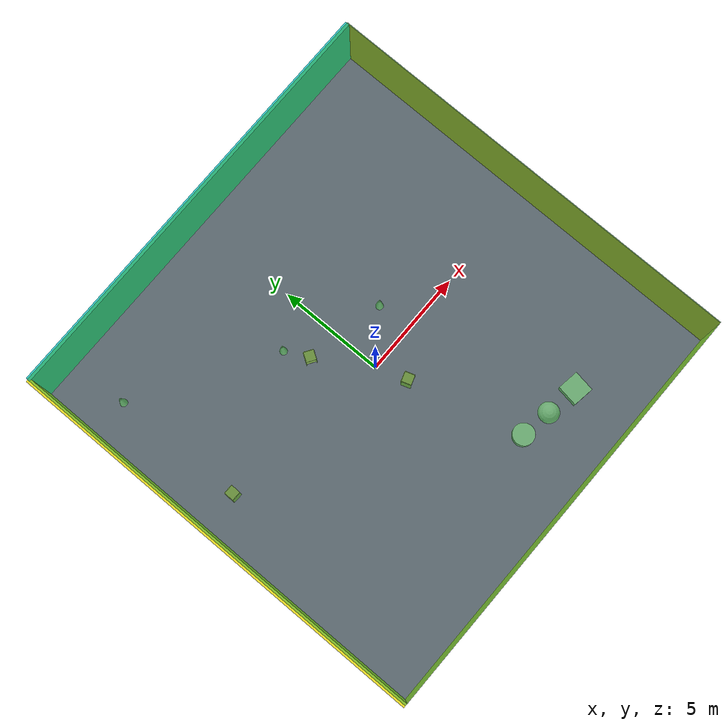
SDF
<sdf version="1.4">
 <world name="default">
  <physics type="ode">
   <max_step_size>0.001</max_step_size>
   <real_time_factor>1</real_time_factor>
   <real_time_update_rate>1000</real_time_update_rate>
   <gravity>0 0 -9.8</gravity>
  </physics>
  <scene><ambient>0.4 0.4 0.4 1</ambient><background>0.7 0.7 0.7 1</background><shadows>1</shadows></scene>
  <model name="Surrounding">
   <static>1</static>
   <link name="Ceiling">
    <collision name="Ceiling_Collision"><geometry><box><size>20 20 0.1</size></box></geometry></collision>
    <visual name="Ceiling_Visual">
     <geometry><box><size>20 20 0.1</size></box></geometry>
     <material>
      <script><uri>file://media/materials/scripts/gazebo.material</uri><name>Gazebo/GreenTransparent</name></script>
     </material>
    </visual>
    <pose>0 0 4.05 0 0 0</pose>
   </link>
   <link name="Wall_South">
    <collision name="Wall_South_Collision">
     <geometry><box><size>20 0 4</size></box></geometry>
     <pose>0 0 2 0 -0 0</pose>
    </collision>
    <visual name="Wall_South_Visual">
     <pose>0 0 2 0 -0 0</pose>
     <geometry><box><size>20 0 4</size></box></geometry>
     <material>
      <script><uri>file://media/materials/scripts/gazebo.material</uri><name>Gazebo/ZincYellow</name></script>
     </material>
    </visual>
    <velocity_decay><linear>0</linear><angular>0</angular></velocity_decay>
    <pose>0 -10 0 0 -0 0</pose>
   </link>
   <link name="Wall_East">
    <collision name="Wall_21_Collision">
     <geometry><box><size>20 0 4</size></box></geometry>
     <pose>0 0 2 0 -0 0</pose>
    </collision>
    <visual name="Wall_21_Visual">
     <pose>0 0 2 0 -0 0</pose>
     <geometry><box><size>20 0 4</size></box></geometry>
     <material>
      <script><uri>file://media/materials/scripts/gazebo.material</uri><name>Gazebo/Orange</name></script>
     </material>
    </visual>
    <velocity_decay><linear>0</linear><angular>0</angular></velocity_decay>
    <pose>10 0 0 0 -0 1.5708</pose>
   </link>
   <link name="Wall_North">
    <collision name="Wall_22_Collision">
     <geometry><box><size>20 0.2 4</size></box></geometry>
     <pose>0 0 2 0 -0 0</pose>
    </collision>
    <visual name="Wall_22_Visual">
     <pose>0 0 2 0 -0 0</pose>
     <geometry><box><size>20 0.2 4</size></box></geometry>
     <material>
      <script><uri>file://media/materials/scripts/gazebo.material</uri><name>Gazebo/TurquoiseGlow</name></script>
     </material>
    </visual>
    <velocity_decay><linear>0</linear><angular>0</angular></velocity_decay>
    <pose>0 10 0 0 -0 0</pose>
   </link>
   <link name="Wall_West">
    <collision name="Wall_23_Collision">
     <geometry><box><size>20 0.2 4</size></box></geometry>
     <pose>0 0 2 0 -0 0</pose>
    </collision>
    <visual name="Wall_23_Visual">
     <pose>0 0 2 0 -0 0</pose>
     <geometry><box><size>20 0.2 4</size></box></geometry>
     <material>
      <script><uri>file://media/materials/scripts/gazebo.material</uri><name>Gazebo/Yellow</name></script>
     </material>
    </visual>
    <velocity_decay><linear>0</linear><angular>0</angular></velocity_decay>
    <pose>-10 0 0 0 0 -1.5708</pose>
   </link>
   <link name="Ground_link">
    <collision name="collision">
     <pose>0 0 .05 0 -0 0</pose>
     <geometry><box><size>20 20 0.1</size></box></geometry>
    </collision>
    <visual name="visual">
     <pose>0 0 .05 0 -0 0</pose>
     <geometry><box><size>20 20 0.1</size></box></geometry>
     <material>
      <script><uri>file://media/materials/scripts/gazebo.material</uri><name>Gazebo/PurpleGlow</name></script>
     </material>
    </visual>
   </link>
   <static>1</static>
  </model>
  <spherical_coordinates>
   <surface_model>EARTH_WGS84</surface_model>
   <latitude_deg>0</latitude_deg>
   <longitude_deg>0</longitude_deg>
   <elevation>0</elevation>
   <heading_deg>0</heading_deg>
  </spherical_coordinates>
  <light name="lightball_0" type="diffuse">
   <diffuse>0.8 0.8 0.8 1</diffuse>
   <specular>0.2 0.2 0.2 1</specular>
   <attenuation>
    <range>100</range>
    <constant>0.7</constant>
    <linear>0.01</linear>
    <quadratic>0.001</quadratic>
   </attenuation>
   <direction>-0.5 0.1 -0.9</direction>
   <pose>-8.55750975702 4.066716764 1.25488176176 0 0 0</pose>
  </light>
  <light name="lightball_1" type="diffuse">
   <diffuse>0.8 0.8 0.8 1</diffuse>
   <specular>0.2 0.2 0.2 1</specular>
   <attenuation>
    <range>100</range>
    <constant>0.7</constant>
    <linear>0.01</linear>
    <quadratic>0.001</quadratic>
   </attenuation>
   <direction>-0.5 0.1 -0.9</direction>
   <pose>5.69417385169 9.68376647594 2.58769437232 0 0 0</pose>
  </light>
  <light name="lightball_2" type="diffuse">
   <diffuse>0.8 0.8 0.8 1</diffuse>
   <specular>0.2 0.2 0.2 1</specular>
   <attenuation>
    <range>100</range>
    <constant>0.7</constant>
    <linear>0.01</linear>
    <quadratic>0.001</quadratic>
   </attenuation>
   <direction>-0.5 0.1 -0.9</direction>
   <pose>2.04723356652 -1.59293798207 3.80185110014 0 0 0</pose>
  </light>
  <light name="lightball_3" type="diffuse">
   <diffuse>0.8 0.8 0.8 1</diffuse>
   <specular>0.2 0.2 0.2 1</specular>
   <attenuation>
    <range>100</range>
    <constant>0.7</constant>
    <linear>0.01</linear>
    <quadratic>0.001</quadratic>
   </attenuation>
   <direction>-0.5 0.1 -0.9</direction>
   <pose>-9.48759157564 -3.56407402176 2.4980457036 0 0 0</pose>
  </light>
  <light name="lightball_4" type="diffuse">
   <diffuse>0.8 0.8 0.8 1</diffuse>
   <specular>0.2 0.2 0.2 1</specular>
   <attenuation>
    <range>100</range>
    <constant>0.7</constant>
    <linear>0.01</linear>
    <quadratic>0.001</quadratic>
   </attenuation>
   <direction>-0.5 0.1 -0.9</direction>
   <pose>6.42238168945 -5.23105714946 1.27402606627 0 0 0</pose>
  </light>
  <light name="lightball_5" type="diffuse">
   <diffuse>0.8 0.8 0.8 1</diffuse>
   <specular>0.2 0.2 0.2 1</specular>
   <attenuation>
    <range>100</range>
    <constant>0.7</constant>
    <linear>0.01</linear>
    <quadratic>0.001</quadratic>
   </attenuation>
   <direction>-0.5 0.1 -0.9</direction>
   <pose>8.32905705713 -6.17668916727 2.91645535914 0 0 0</pose>
  </light>
  <light name="lightball_6" type="diffuse">
   <diffuse>0.8 0.8 0.8 1</diffuse>
   <specular>0.2 0.2 0.2 1</specular>
   <attenuation>
    <range>100</range>
    <constant>0.7</constant>
    <linear>0.01</linear>
    <quadratic>0.001</quadratic>
   </attenuation>
   <direction>-0.5 0.1 -0.9</direction>
   <pose>1.39026843415 -2.2151062075 0.947374304731 0 0 0</pose>
  </light>
  <light name="lightball_7" type="diffuse">
   <diffuse>0.8 0.8 0.8 1</diffuse>
   <specular>0.2 0.2 0.2 1</specular>
   <attenuation>
    <range>100</range>
    <constant>0.7</constant>
    <linear>0.01</linear>
    <quadratic>0.001</quadratic>
   </attenuation>
   <direction>-0.5 0.1 -0.9</direction>
   <pose>3.8919366923 -1.28786338865 1.85764798115 0 0 0</pose>
  </light>
  <light name="lightball_8" type="diffuse">
   <diffuse>0.8 0.8 0.8 1</diffuse>
   <specular>0.2 0.2 0.2 1</specular>
   <attenuation>
    <range>100</range>
    <constant>0.7</constant>
    <linear>0.01</linear>
    <quadratic>0.001</quadratic>
   </attenuation>
   <direction>-0.5 0.1 -0.9</direction>
   <pose>-2.2786188869 -4.45690560381 3.55582963531 0 0 0</pose>
  </light>
  <light name="lightball_9" type="diffuse">
   <diffuse>0.8 0.8 0.8 1</diffuse>
   <specular>0.2 0.2 0.2 1</specular>
   <attenuation>
    <range>100</range>
    <constant>0.7</constant>
    <linear>0.01</linear>
    <quadratic>0.001</quadratic>
   </attenuation>
   <direction>-0.5 0.1 -0.9</direction>
   <pose>-2.5922123876 -6.13567904535 1.17693575917 0 0 0</pose>
  </light>
  <light name="lightball_10" type="diffuse">
   <diffuse>0.8 0.8 0.8 1</diffuse>
   <specular>0.2 0.2 0.2 1</specular>
   <attenuation>
    <range>100</range>
    <constant>0.7</constant>
    <linear>0.01</linear>
    <quadratic>0.001</quadratic>
   </attenuation>
   <direction>-0.5 0.1 -0.9</direction>
   <pose>-8.2531457005 -2.75556060496 3.49135552004 0 0 0</pose>
  </light>
  <light name="lightball_11" type="diffuse">
   <diffuse>0.8 0.8 0.8 1</diffuse>
   <specular>0.2 0.2 0.2 1</specular>
   <attenuation>
    <range>100</range>
    <constant>0.7</constant>
    <linear>0.01</linear>
    <quadratic>0.001</quadratic>
   </attenuation>
   <direction>-0.5 0.1 -0.9</direction>
   <pose>-3.0302926723 -9.66897553372 3.30588519326 0 0 0</pose>
  </light>
  <light name="lightball_12" type="diffuse">
   <diffuse>0.8 0.8 0.8 1</diffuse>
   <specular>0.2 0.2 0.2 1</specular>
   <attenuation>
    <range>100</range>
    <constant>0.7</constant>
    <linear>0.01</linear>
    <quadratic>0.001</quadratic>
   </attenuation>
   <direction>-0.5 0.1 -0.9</direction>
   <pose>-6.62708666943 -8.91540494894 1.76354816118 0 0 0</pose>
  </light>
  <include><uri>model://cabinet</uri><pose>-8.07549824084 1.03692252447 0 0 0 3.09083596752</pose></include>
  <include>
   <uri>model://construction_cone</uri>
   <pose>-8.16570223078 7.25724364468 0 0 0 1.80411469791</pose>
  </include>
  <include><uri>model://cabinet</uri><pose>-1.5447237418 2.34631584066 0 0 0 0.999458974234</pose></include>
  <include>
   <uri>model://construction_cone</uri>
   <pose>-2.02253853025 3.48516220026 0 0 0 0.632375124087</pose>
  </include>
  <include><uri>model://cabinet</uri><pose>0.425530978259 -1.47112317183 0 0 0 1.88829106074</pose></include>
  <include>
   <uri>model://construction_cone</uri>
   <pose>2.18643416194 1.60444602659 0 0 0 2.55932198905</pose>
  </include>
  <include>
   <uri>model://textured_shapes</uri>
   <pose>3.31034911595 -6.96815270957 0 0 0 1.42291601215</pose>
  </include>
 </world>
</sdf>

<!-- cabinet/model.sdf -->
<sdf version="1.5">
  <model name="cabinet">
    <static>true</static>
    <link name="cabinet_bottom_plate">
      <inertial>
        <pose>0 0 -1 0 0 0</pose>
        <inertia>
          <ixx>2.050000</ixx>
          <ixy>0</ixy>
          <ixz>0</ixz>
          <iyy>2.050000</iyy>
          <iyz>0</iyz>
          <izz>2.050000</izz>
        </inertia>
        <mass>25.000000</mass>
      </inertial>
      <collision name="cabinet_bottom_plate_geom">
        <pose>0 0 0.010000 0 0 0</pose>
        <geometry>
          <box>
            <size>0.450000 0.450000 0.020000</size>
          </box>
        </geometry>
      </collision>
      <visual name="cabinet_bottom_plate_geom_visual">
        <pose>0 0 0.010000 0 0 0</pose>
        <geometry>
          <box>
            <size>0.450000 0.450000 0.020000</size>
          </box>
        </geometry>
        <material>
          <script>
            <uri>model://media/materials/scripts/gazebo.material</uri>
            <name>Gazebo/Wood</name>
          </script>
        </material>
      </visual>
      <collision name="cabinet_bottom_plate_geom_cabinet_back_plate">
        <pose>0.235000 0 0.510000 0 0 0</pose>
        <geometry>
          <box>
            <size>0.020000 0.450000 1.020000</size>
          </box>
        </geometry>
      </collision>
      <visual name="cabinet_bottom_plate_geom_cabinet_back_plate_visual">
        <pose>0.235000 0 0.510000 0 0 0</pose>
        <geometry>
          <box>
            <size>0.020000 0.450000 1.020000</size>
          </box>
        </geometry>
        <material>
          <script>
            <uri>model://media/materials/scripts/gazebo.material</uri>
            <name>Gazebo/Wood</name>
          </script>
        </material>
      </visual>
      <collision name="cabinet_bottom_plate_geom_cabinet_left_plate">
        <pose>0 0.235000 0.510000 0 0 0</pose>
        <geometry>
          <box>
            <size>0.450000 0.020000 1.020000</size>
          </box>
        </geometry>
      </collision>
      <visual name="cabinet_bottom_plate_geom_cabinet_left_plate_visual">
        <pose>0 0.235000 0.510000 0 0 0</pose>
        <geometry>
          <box>
            <size>0.450000 0.020000 1.020000</size>
          </box>
        </geometry>
        <material>
          <script>
            <uri>model://media/materials/scripts/gazebo.material</uri>
            <name>Gazebo/Wood</name>
          </script>
        </material>
      </visual>
      <collision name="cabinet_bottom_plate_geom_cabinet_middle_plate">
        <pose>0 0 0.510000 0 0 0</pose>
        <geometry>
          <box>
            <size>0.450000 0.450000 0.020000</size>
          </box>
        </geometry>
      </collision>
      <visual name="cabinet_bottom_plate_geom_cabinet_middle_plate_visual">
        <pose>0 0 0.510000 0 0 0</pose>
        <geometry>
          <box>
            <size>0.450000 0.450000 0.020000</size>
          </box>
        </geometry>
        <material>
          <script>
            <uri>model://media/materials/scripts/gazebo.material</uri>
            <name>Gazebo/Wood</name>
          </script>
        </material>
      </visual>
      <collision name="cabinet_bottom_plate_geom_cabinet_right_plate">
        <pose>0 -0.235000 0.510000 0 0 0</pose>
        <geometry>
          <box>
            <size>0.450000 0.020000 1.020000</size>
          </box>
        </geometry>
      </collision>
      <visual name="cabinet_bottom_plate_geom_cabinet_right_plate_visual">
        <pose>0 -0.235000 0.510000 0 0 0</pose>
        <geometry>
          <box>
            <size>0.450000 0.020000 1.020000</size>
          </box>
        </geometry>
        <material>
          <script>
            <uri>model://media/materials/scripts/gazebo.material</uri>
            <name>Gazebo/Wood</name>
          </script>
        </material>
      </visual>
      <collision name="cabinet_bottom_plate_geom_cabinet_top_plate">
        <pose>0 0 1.010000 0 0 0</pose>
        <geometry>
          <box>
            <size>0.450000 0.450000 0.020000</size>
          </box>
        </geometry>
      </collision>
      <visual name="cabinet_bottom_plate_geom_cabinet_top_plate_visual">
        <pose>0 0 1.010000 0 0 0</pose>
        <geometry>
          <box>
            <size>0.450000 0.450000 0.020000</size>
          </box>
        </geometry>
        <material>
          <script>
            <uri>model://media/materials/scripts/gazebo.material</uri>
            <name>Gazebo/Wood</name>
          </script>
        </material>
      </visual>
    </link>
  </model>
</sdf>

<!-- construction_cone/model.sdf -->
<sdf version="1.5">
  <model name="Construction Cone">
    <link name="link">
      <collision name="collision">
        <geometry>
          <mesh>
            <scale>10 10 10</scale>
            <uri>file://isr-testbed/construction_cone/meshes/construction_cone.dae</uri>
          </mesh>
        </geometry>
      </collision>
      <visual name="visual">
        <geometry>
          <mesh>
            <scale>10 10 10</scale>
            <uri>file://isr-testbed/construction_cone/meshes/construction_cone.dae</uri>
          </mesh>
        </geometry>
      </visual>
    </link>
  </model>
</sdf>

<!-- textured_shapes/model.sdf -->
<sdf version="1.6">
  <model name="textured_shapes">
    <pose>0 0 0.5 0 0 0</pose>
    <link name="box">
      <pose>0 -1.5 0 0 0 0</pose>
      <collision name="collision">
        <geometry>
          <box>
            <size>1 1 1</size>
          </box>
        </geometry>
      </collision>
      <visual name="visual">
        <geometry>
          <box>
            <size>1 1 1</size>
          </box>
        </geometry>
        <material>
          <script>
            <uri>model://../model_source/models/textured_shapes/materials/scripts</uri>
            <uri>model://../model_source/models/textured_shapes/materials/textures</uri>
            <name>TexturedShape/Squares</name>
          </script>
        </material>
      </visual>
    </link>
    <link name="sphere">
      <collision name="collision">
        <geometry>
          <sphere>
            <radius>0.5</radius>
          </sphere>
        </geometry>
      </collision>
      <visual name="visual">
        <geometry>
          <sphere>
            <radius>0.5</radius>
          </sphere>
        </geometry>
        <material>
          <script>
            <uri>model://../model_source/models/textured_shapes/materials/scripts</uri>
            <uri>model://../model_source/models/textured_shapes/materials/textures</uri>
            <name>TexturedShape/Squares</name>
          </script>
        </material>
      </visual>
    </link>
    <link name="cylinder">
      <pose>0 1.5 0 0 0 0</pose>
      <collision name="collision">
        <geometry>
          <cylinder>
            <radius>0.5</radius>
            <length>1</length>
          </cylinder>
        </geometry>
      </collision>
      <visual name="visual">
        <geometry>
          <cylinder>
            <radius>0.5</radius>
            <length>1</length>
          </cylinder>
        </geometry>
        <material>
          <script>
            <uri>model://../model_source/models/textured_shapes/materials/scripts</uri>
            <uri>model://../model_source/models/textured_shapes/materials/textures</uri>
            <name>TexturedShape/Squares</name>
          </script>
        </material>
      </visual>
    </link>
  </model>
</sdf>
